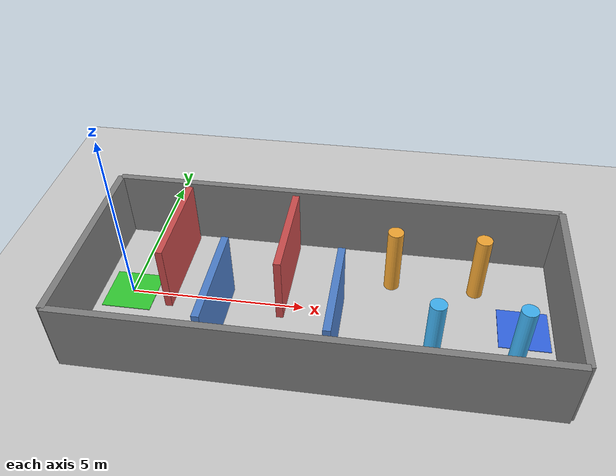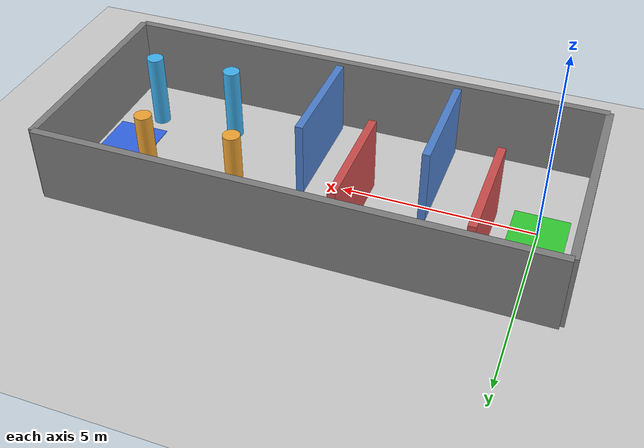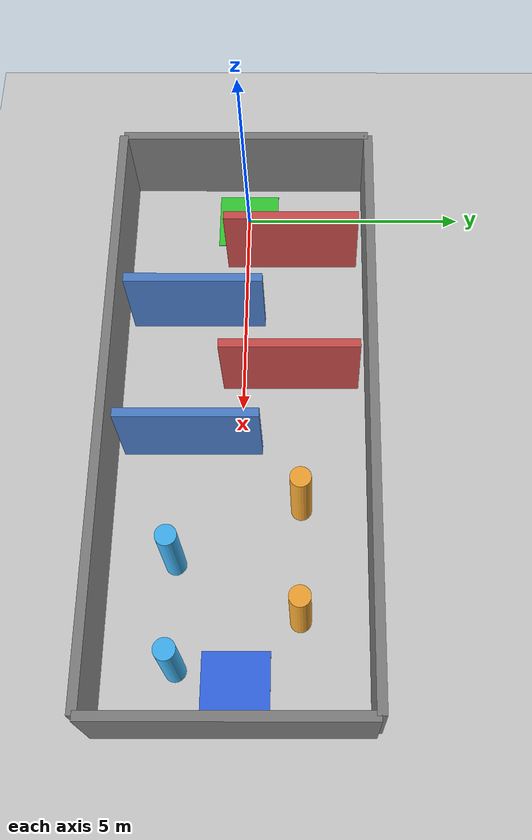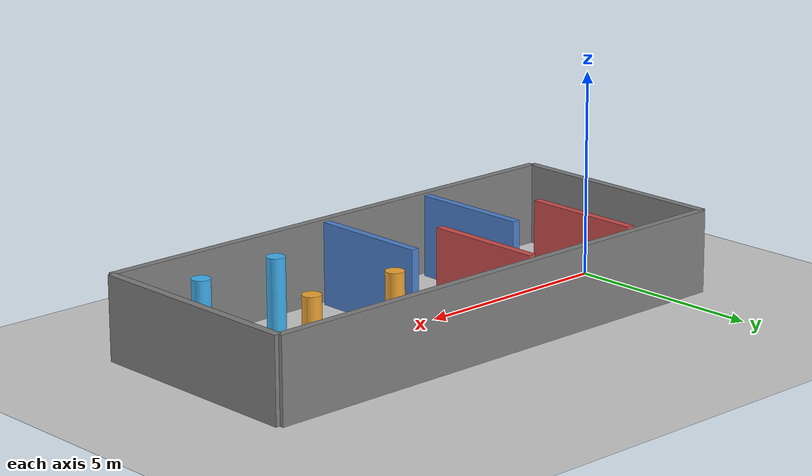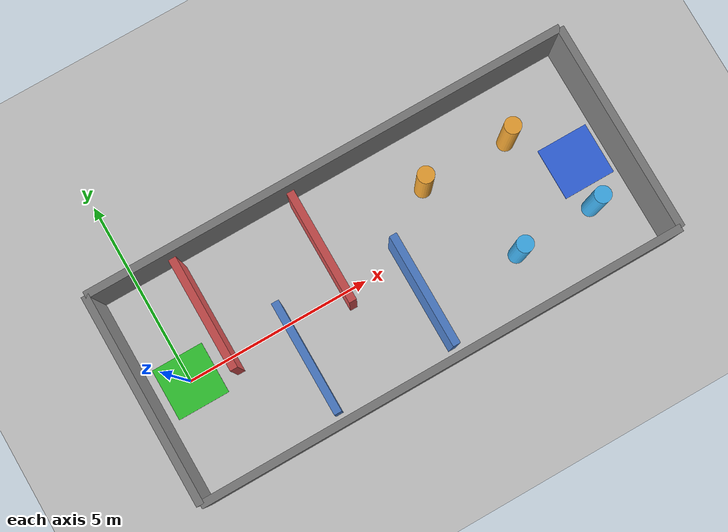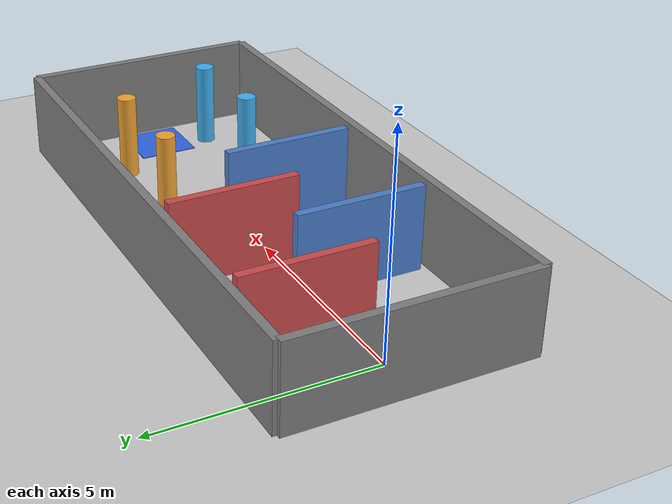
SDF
<sdf version="1.9">
 <world name="depthai_test_world">
  <physics name="default_physics" type="ode">
   <max_step_size>0.001</max_step_size>
   <real_time_factor>1.0</real_time_factor>
  </physics>
  <ambient>1 1 1 1</ambient>
  <model name="sun">
   <static>true</static>
   <pose>5 5 10 0 0 0</pose>
   <link name="sun_link">
    <light name="sun" type="directional">
     <diffuse>1 1 1 1</diffuse>
     <specular>0.5 0.5 0.5 1</specular>
     <direction>0 0 -1</direction>
     <attenuation>
      <range>1000</range>
      <constant>0.9</constant>
      <linear>0.01</linear>
      <quadratic>0.001</quadratic>
     </attenuation>
    </light>
   </link>
  </model>
  <model name="ground_plane">
   <static>true</static>
   <link name="link">
    <collision name="collision">
     <geometry><plane><normal>0 0 1</normal><size>100 100</size></plane></geometry>
     <surface><friction><ode><mu>1</mu><mu2>1</mu2></ode></friction></surface>
    </collision>
    <visual name="visual">
     <geometry><plane><normal>0 0 1</normal><size>100 100</size></plane></geometry>
     <material><ambient>0.6 0.6 0.6 1</ambient><diffuse>0.8 0.8 0.8 1</diffuse></material>
    </visual>
   </link>
  </model>
  <model name="start_zone_marker">
   <static>true</static>
   <pose>0 0 0.01 0 0 0</pose>
   <link name="link">
    <visual name="visual">
     <geometry><box><size>1.4 1.4 0.02</size></box></geometry>
     <material><ambient>0.1 0.5 0.1 1</ambient><diffuse>0.2 0.8 0.2 1</diffuse></material>
    </visual>
    <collision name="collision"><geometry><box><size>1.4 1.4 0.02</size></box></geometry></collision>
   </link>
  </model>
  <model name="maze_wall_north">
   <static>true</static>
   <pose>5.5 2.8 1.0 0 0 0</pose>
   <link name="link">
    <visual name="visual">
     <geometry><box><size>13.0 0.2 2.0</size></box></geometry>
     <material><ambient>0.35 0.35 0.35 1</ambient><diffuse>0.5 0.5 0.5 1</diffuse></material>
    </visual>
    <collision name="collision"><geometry><box><size>13.0 0.2 2.0</size></box></geometry></collision>
   </link>
  </model>
  <model name="maze_wall_south">
   <static>true</static>
   <pose>5.5 -2.8 1.0 0 0 0</pose>
   <link name="link">
    <visual name="visual">
     <geometry><box><size>13.0 0.2 2.0</size></box></geometry>
     <material><ambient>0.35 0.35 0.35 1</ambient><diffuse>0.5 0.5 0.5 1</diffuse></material>
    </visual>
    <collision name="collision"><geometry><box><size>13.0 0.2 2.0</size></box></geometry></collision>
   </link>
  </model>
  <model name="maze_wall_west">
   <static>true</static>
   <pose>-1.0 0 1.0 0 0 0</pose>
   <link name="link">
    <visual name="visual">
     <geometry><box><size>0.2 5.6 2.0</size></box></geometry>
     <material><ambient>0.35 0.35 0.35 1</ambient><diffuse>0.5 0.5 0.5 1</diffuse></material>
    </visual>
    <collision name="collision"><geometry><box><size>0.2 5.6 2.0</size></box></geometry></collision>
   </link>
  </model>
  <model name="maze_wall_east">
   <static>true</static>
   <pose>12.0 0 1.0 0 0 0</pose>
   <link name="link">
    <visual name="visual">
     <geometry><box><size>0.2 5.6 2.0</size></box></geometry>
     <material><ambient>0.35 0.35 0.35 1</ambient><diffuse>0.5 0.5 0.5 1</diffuse></material>
    </visual>
    <collision name="collision"><geometry><box><size>0.2 5.6 2.0</size></box></geometry></collision>
   </link>
  </model>
  <model name="maze_half_v1">
   <static>true</static>
   <pose>1.2 1.05 1.0 0 0 0</pose>
   <link name="link">
    <visual name="visual">
     <geometry><box><size>0.2 3.0 2.0</size></box></geometry>
     <material><ambient>0.55 0.22 0.22 1</ambient><diffuse>0.8 0.3 0.3 1</diffuse></material>
    </visual>
    <collision name="collision"><geometry><box><size>0.2 3.0 2.0</size></box></geometry></collision>
   </link>
  </model>
  <model name="maze_half_v2">
   <static>true</static>
   <pose>2.8 -1.05 1.0 0 0 0</pose>
   <link name="link">
    <visual name="visual">
     <geometry><box><size>0.2 3.0 2.0</size></box></geometry>
     <material><ambient>0.22 0.35 0.55 1</ambient><diffuse>0.3 0.5 0.8 1</diffuse></material>
    </visual>
    <collision name="collision"><geometry><box><size>0.2 3.0 2.0</size></box></geometry></collision>
   </link>
  </model>
  <model name="maze_half_v3">
   <static>true</static>
   <pose>4.4 1.05 1.0 0 0 0</pose>
   <link name="link">
    <visual name="visual">
     <geometry><box><size>0.2 3.0 2.0</size></box></geometry>
     <material><ambient>0.55 0.22 0.22 1</ambient><diffuse>0.8 0.3 0.3 1</diffuse></material>
    </visual>
    <collision name="collision"><geometry><box><size>0.2 3.0 2.0</size></box></geometry></collision>
   </link>
  </model>
  <model name="maze_half_v4">
   <static>true</static>
   <pose>6.0 -1.05 1.0 0 0 0</pose>
   <link name="link">
    <visual name="visual">
     <geometry><box><size>0.2 3.0 2.0</size></box></geometry>
     <material><ambient>0.22 0.35 0.55 1</ambient><diffuse>0.3 0.5 0.8 1</diffuse></material>
    </visual>
    <collision name="collision"><geometry><box><size>0.2 3.0 2.0</size></box></geometry></collision>
   </link>
  </model>
  <model name="chicane_pillar_1">
   <static>true</static>
   <pose>7.4 1.30 1.0 0 0 0</pose>
   <link name="link">
    <visual name="visual">
     <geometry><cylinder><radius>0.22</radius><length>2.0</length></cylinder></geometry>
     <material><ambient>0.85 0.55 0.15 1</ambient><diffuse>0.95 0.65 0.2 1</diffuse></material>
    </visual>
    <collision name="collision">
     <geometry><cylinder><radius>0.22</radius><length>2.0</length></cylinder></geometry>
    </collision>
   </link>
  </model>
  <model name="chicane_pillar_2">
   <static>true</static>
   <pose>8.6 -1.30 1.0 0 0 0</pose>
   <link name="link">
    <visual name="visual">
     <geometry><cylinder><radius>0.22</radius><length>2.0</length></cylinder></geometry>
     <material><ambient>0.2 0.6 0.85 1</ambient><diffuse>0.25 0.7 0.95 1</diffuse></material>
    </visual>
    <collision name="collision">
     <geometry><cylinder><radius>0.22</radius><length>2.0</length></cylinder></geometry>
    </collision>
   </link>
  </model>
  <model name="chicane_pillar_3">
   <static>true</static>
   <pose>9.8 1.30 1.0 0 0 0</pose>
   <link name="link">
    <visual name="visual">
     <geometry><cylinder><radius>0.22</radius><length>2.0</length></cylinder></geometry>
     <material><ambient>0.85 0.55 0.15 1</ambient><diffuse>0.95 0.65 0.2 1</diffuse></material>
    </visual>
    <collision name="collision">
     <geometry><cylinder><radius>0.22</radius><length>2.0</length></cylinder></geometry>
    </collision>
   </link>
  </model>
  <model name="chicane_pillar_4">
   <static>true</static>
   <pose>10.8 -1.20 1.0 0 0 0</pose>
   <link name="link">
    <visual name="visual">
     <geometry><cylinder><radius>0.22</radius><length>2.0</length></cylinder></geometry>
     <material><ambient>0.2 0.6 0.85 1</ambient><diffuse>0.25 0.7 0.95 1</diffuse></material>
    </visual>
    <collision name="collision">
     <geometry><cylinder><radius>0.22</radius><length>2.0</length></cylinder></geometry>
    </collision>
   </link>
  </model>
  <model name="finish_zone_marker">
   <static>true</static>
   <pose>11.1 0 0.01 0 0 0</pose>
   <link name="link">
    <visual name="visual">
     <geometry><box><size>1.4 1.4 0.02</size></box></geometry>
     <material><ambient>0.1 0.2 0.7 1</ambient><diffuse>0.2 0.4 0.9 1</diffuse></material>
    </visual>
    <collision name="collision"><geometry><box><size>1.4 1.4 0.02</size></box></geometry></collision>
   </link>
  </model>
  <plugin filename="gz-sim-physics-system" name="gz::sim::systems::Physics"/>
  <plugin filename="gz-sim-user-commands-system" name="gz::sim::systems::UserCommands"/>
  <plugin filename="gz-sim-scene-broadcaster-system" name="gz::sim::systems::SceneBroadcaster"/>
  <plugin filename="gz-sim-sensors-system" name="gz::sim::systems::Sensors">
   <render_engine>ogre2</render_engine>
  </plugin>
  <plugin filename="gz-sim-imu-system" name="gz::sim::systems::Imu"/>
  <model name="world_frame">
   <static>true</static>
   <link name="world_link">
    <inertial><mass>1e-6</mass><inertia><ixx>1e-9</ixx><iyy>1e-9</iyy><izz>1e-9</izz></inertia></inertial>
   </link>
   <plugin filename="gz-sim-pose-publisher-system" name="gz::sim::systems::PosePublisher">
    <publish_link_pose>true</publish_link_pose>
    <publish_nested_model_pose>false</publish_nested_model_pose>
    <use_pose_vector_msg>true</use_pose_vector_msg>
    <update_frequency>30</update_frequency>
   </plugin>
  </model>
  <model name="odom_frame">
   <static>true</static>
   <link name="odom">
    <inertial><mass>1e-6</mass><inertia><ixx>1e-9</ixx><iyy>1e-9</iyy><izz>1e-9</izz></inertia></inertial>
   </link>
   <plugin filename="gz-sim-pose-publisher-system" name="gz::sim::systems::PosePublisher">
    <publish_link_pose>true</publish_link_pose>
    <publish_nested_model_pose>false</publish_nested_model_pose>
    <use_pose_vector_msg>true</use_pose_vector_msg>
    <update_frequency>30</update_frequency>
   </plugin>
  </model>
 </world>
</sdf>
